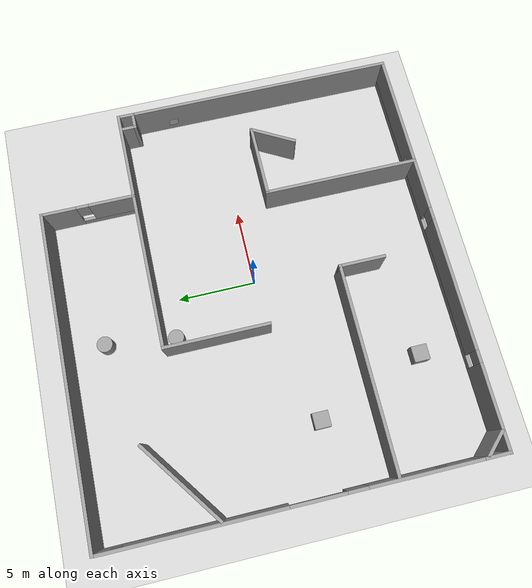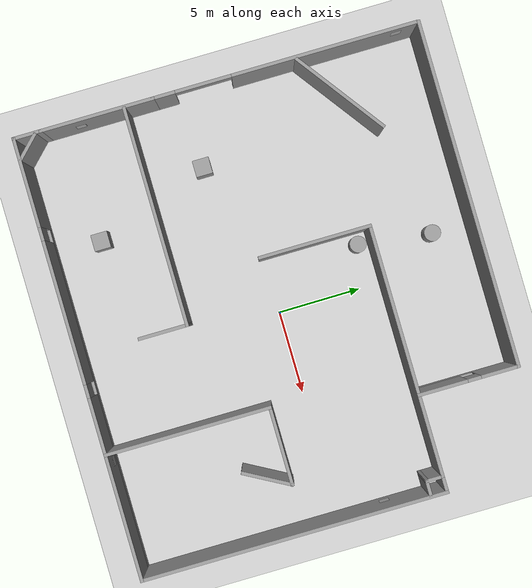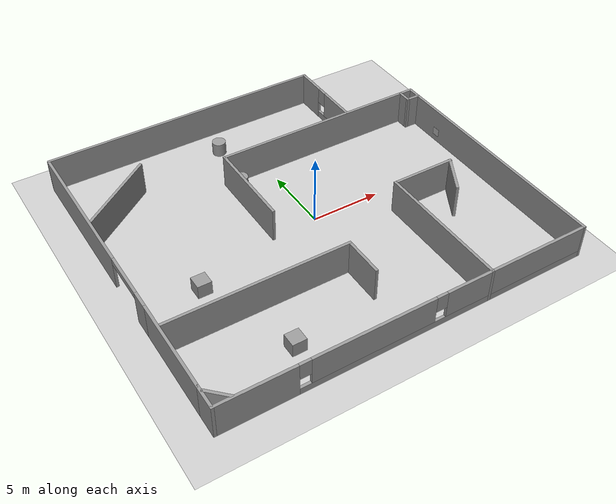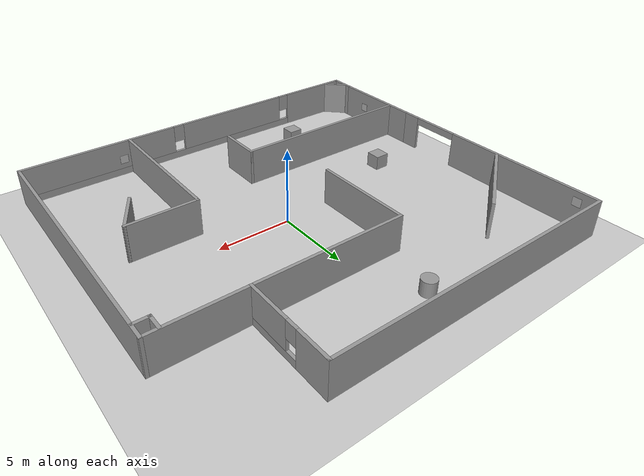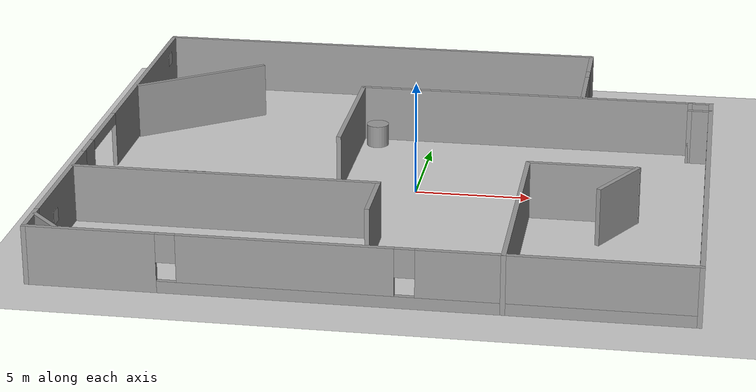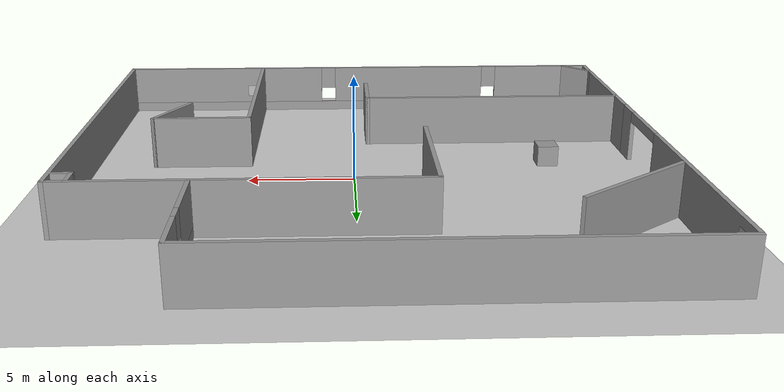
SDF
<sdf version="1.4">
 <world name="default">
  <light name="sun" type="directional">
   <pose>0 0 10 0 -0 0</pose>
   <diffuse>0.8 0.8 0.8 1</diffuse>
   <specular>0.2 0.2 0.2 1</specular>
   <attenuation>
    <range>1000</range>
    <constant>0.9</constant>
    <linear>0.01</linear>
    <quadratic>0.001</quadratic>
   </attenuation>
   <direction>-0.5 0.1 -0.9</direction>
  </light>
  <model name="ground_plane">
   <static>1</static>
   <link name="link">
    <collision name="collision">
     <geometry><plane><normal>0 0 1</normal><size>100 100</size></plane></geometry>
     <surface><friction><ode><mu>100</mu><mu2>50</mu2></ode></friction></surface>
    </collision>
    <visual name="visual">
     <cast_shadows>0</cast_shadows>
     <geometry><plane><normal>0 0 1</normal><size>100 100</size></plane></geometry>
     <material>
      <script><uri>file://media/materials/scripts/gazebo.material</uri><name>Gazebo/Grey</name></script>
     </material>
    </visual>
    <velocity_decay><linear>0</linear><angular>0</angular></velocity_decay>
   </link>
  </model>
  <physics type="ode">
   <max_step_size>0.001</max_step_size>
   <real_time_factor>1</real_time_factor>
   <real_time_update_rate>1000</real_time_update_rate>
   <gravity>0 0 -9.8</gravity>
  </physics>
  <scene><ambient>0.4 0.4 0.4 1</ambient><background>0.7 0.7 0.7 1</background><shadows>1</shadows></scene>
  <spherical_coordinates>
   <surface_model>EARTH_WGS84</surface_model>
   <latitude_deg>0</latitude_deg>
   <longitude_deg>0</longitude_deg>
   <elevation>0</elevation>
   <heading_deg>0</heading_deg>
  </spherical_coordinates>
  <model name="CasaBuena">
   <link name="Wall_10">
    <collision name="Wall_10_Collision">
     <geometry><box><size>6.78041 0.2 2.5</size></box></geometry>
     <pose>0 0 1.25 0 -0 0</pose>
    </collision>
    <visual name="Wall_10_Visual">
     <pose>0 0 1.25 0 -0 0</pose>
     <geometry><box><size>6.78041 0.2 2.5</size></box></geometry>
     <material>
      <script><uri>file://media/materials/scripts/gazebo.material</uri><name>Gazebo/Grey</name></script>
     </material>
    </visual>
    <velocity_decay><linear>0</linear><angular>0</angular></velocity_decay>
    <pose>-0.354843 0.05158 0 0 0 -1.5708</pose>
   </link>
   <link name="Wall_12">
    <collision name="Wall_12_Collision">
     <geometry><box><size>20.7903 0.2 2.5</size></box></geometry>
     <pose>0 0 1.25 0 -0 0</pose>
    </collision>
    <visual name="Wall_12_Visual">
     <pose>0 0 1.25 0 -0 0</pose>
     <geometry><box><size>20.7903 0.2 2.5</size></box></geometry>
     <material>
      <script><uri>file://media/materials/scripts/gazebo.material</uri><name>Gazebo/Grey</name></script>
     </material>
    </visual>
    <velocity_decay><linear>0</linear><angular>0</angular></velocity_decay>
    <pose>-0.531735 9.28538 0 0 -0 0</pose>
   </link>
   <link name="Wall_13">
    <pose>9.76342 6.31358 0 0 0 -1.5708</pose>
    <visual name="Wall_13_Visual_0">
     <pose>-1.90929 0 1.25 0 -0 0</pose>
     <geometry><box><size>2.32501 0.2 2.5</size></box></geometry>
     <material>
      <script><uri>file://media/materials/scripts/gazebo.material</uri><name>Gazebo/Grey</name></script>
     </material>
    </visual>
    <collision name="Wall_13_Collision_0">
     <geometry><box><size>2.32501 0.2 2.5</size></box></geometry>
     <pose>-1.90929 0 1.25 0 -0 0</pose>
    </collision>
    <visual name="Wall_13_Visual_1">
     <pose>1.1625 0 0.25 0 -0 0</pose>
     <geometry><box><size>3.81859 0.2 0.5</size></box></geometry>
     <material>
      <script><uri>file://media/materials/scripts/gazebo.material</uri><name>Gazebo/Grey</name></script>
     </material>
    </visual>
    <collision name="Wall_13_Collision_1">
     <geometry><box><size>3.81859 0.2 0.5</size></box></geometry>
     <pose>1.1625 0 0.25 0 -0 0</pose>
    </collision>
    <visual name="Wall_13_Visual_2">
     <pose>1.5625 0 1.5 0 -0 0</pose>
     <geometry><box><size>3.01858 0.2 2</size></box></geometry>
     <material>
      <script><uri>file://media/materials/scripts/gazebo.material</uri><name>Gazebo/Grey</name></script>
     </material>
    </visual>
    <collision name="Wall_13_Collision_2">
     <geometry><box><size>3.01858 0.2 2</size></box></geometry>
     <pose>1.5625 0 1.5 0 -0 0</pose>
    </collision>
    <visual name="Wall_13_Visual_3">
     <pose>-0.346788 0 1.9 0 -0 0</pose>
     <geometry><box><size>0.8 0.2 1.2</size></box></geometry>
     <material>
      <script><uri>file://media/materials/scripts/gazebo.material</uri><name>Gazebo/Grey</name></script>
     </material>
    </visual>
    <collision name="Wall_13_Collision_3">
     <geometry><box><size>0.8 0.2 1.2</size></box></geometry>
     <pose>-0.346788 0 1.9 0 -0 0</pose>
    </collision>
    <velocity_decay><linear>0</linear><angular>0</angular></velocity_decay>
   </link>
   <link name="Wall_15">
    <collision name="Wall_15_Collision">
     <geometry><box><size>13.1485 0.2 2.5</size></box></geometry>
     <pose>0 0 1.25 0 -0 0</pose>
    </collision>
    <visual name="Wall_15_Visual">
     <pose>0 0 1.25 0 -0 0</pose>
     <geometry><box><size>13.1485 0.2 2.5</size></box></geometry>
     <material>
      <script><uri>file://media/materials/scripts/gazebo.material</uri><name>Gazebo/Grey</name></script>
     </material>
    </visual>
    <velocity_decay><linear>0</linear><angular>0</angular></velocity_decay>
    <pose>-4.28186 -8.33313 0 0 -0 0</pose>
   </link>
   <link name="Wall_16">
    <collision name="Wall_16_Collision">
     <geometry><box><size>3.03028 0.2 2.5</size></box></geometry>
     <pose>0 0 1.25 0 -0 0</pose>
    </collision>
    <visual name="Wall_16_Visual">
     <pose>0 0 1.25 0 -0 0</pose>
     <geometry><box><size>3.03028 0.2 2.5</size></box></geometry>
     <material>
      <script><uri>file://media/materials/scripts/gazebo.material</uri><name>Gazebo/Grey</name></script>
     </material>
    </visual>
    <velocity_decay><linear>0</linear><angular>0</angular></velocity_decay>
    <pose>2.19241 -9.74827 0 0 0 -1.5708</pose>
   </link>
   <link name="Wall_18">
    <collision name="Wall_18_Collision">
     <geometry><box><size>10.0352 0.2 2.5</size></box></geometry>
     <pose>0 0 1.25 0 -0 0</pose>
    </collision>
    <visual name="Wall_18_Visual">
     <pose>0 0 1.25 0 -0 0</pose>
     <geometry><box><size>10.0352 0.2 2.5</size></box></geometry>
     <material>
      <script><uri>file://media/materials/scripts/gazebo.material</uri><name>Gazebo/Grey</name></script>
     </material>
    </visual>
    <velocity_decay><linear>0</linear><angular>0</angular></velocity_decay>
    <pose>8.06525 -9.99592 0 0 -0 1.5708</pose>
   </link>
   <link name="Wall_19">
    <collision name="Wall_19_Collision">
     <geometry><box><size>4.79921 0.2 2.5</size></box></geometry>
     <pose>0 0 1.25 0 -0 0</pose>
    </collision>
    <visual name="Wall_19_Visual">
     <pose>0 0 1.25 0 -0 0</pose>
     <geometry><box><size>4.79921 0.2 2.5</size></box></geometry>
     <material>
      <script><uri>file://media/materials/scripts/gazebo.material</uri><name>Gazebo/Grey</name></script>
     </material>
    </visual>
    <velocity_decay><linear>0</linear><angular>0</angular></velocity_decay>
    <pose>10.3649 -5.07831 0 0 -0 0</pose>
   </link>
   <link name="Wall_20">
    <collision name="Wall_20_Collision">
     <geometry><box><size>3.11395 0.2 2.5</size></box></geometry>
     <pose>0 0 1.25 0 -0 0</pose>
    </collision>
    <visual name="Wall_20_Visual">
     <pose>0 0 1.25 0 -0 0</pose>
     <geometry><box><size>3.11395 0.2 2.5</size></box></geometry>
     <material>
      <script><uri>file://media/materials/scripts/gazebo.material</uri><name>Gazebo/Grey</name></script>
     </material>
    </visual>
    <velocity_decay><linear>0</linear><angular>0</angular></velocity_decay>
    <pose>11.9569 -6.35193 0 0 0 -2.07789</pose>
   </link>
   <link name="Wall_22">
    <collision name="Wall_22_Collision">
     <geometry><box><size>1.81673 0.2 2.5</size></box></geometry>
     <pose>0 0 1.25 0 -0 0</pose>
    </collision>
    <visual name="Wall_22_Visual">
     <pose>0 0 1.25 0 -0 0</pose>
     <geometry><box><size>1.81673 0.2 2.5</size></box></geometry>
     <material>
      <script><uri>file://media/materials/scripts/gazebo.material</uri><name>Gazebo/Grey</name></script>
     </material>
    </visual>
    <velocity_decay><linear>0</linear><angular>0</angular></velocity_decay>
    <pose>-10.1725 -14.2616 0 0 0 -0.785398</pose>
   </link>
   <link name="Wall_24">
    <collision name="Wall_24_Collision">
     <geometry><box><size>1.10409 0.2 2.5</size></box></geometry>
     <pose>0 0 1.25 0 -0 0</pose>
    </collision>
    <visual name="Wall_24_Visual">
     <pose>0 0 1.25 0 -0 0</pose>
     <geometry><box><size>1.10409 0.2 2.5</size></box></geometry>
     <material>
      <script><uri>file://media/materials/scripts/gazebo.material</uri><name>Gazebo/Grey</name></script>
     </material>
    </visual>
    <velocity_decay><linear>0</linear><angular>0</angular></velocity_decay>
    <pose>14.6273 2.83875 0 0 0 -1.5708</pose>
   </link>
   <link name="Wall_25">
    <collision name="Wall_25_Collision">
     <geometry><box><size>1.09504 0.2 2.5</size></box></geometry>
     <pose>0 0 1.25 0 -0 0</pose>
    </collision>
    <visual name="Wall_25_Visual">
     <pose>0 0 1.25 0 -0 0</pose>
     <geometry><box><size>1.09504 0.2 2.5</size></box></geometry>
     <material>
      <script><uri>file://media/materials/scripts/gazebo.material</uri><name>Gazebo/Grey</name></script>
     </material>
    </visual>
    <velocity_decay><linear>0</linear><angular>0</angular></velocity_decay>
    <pose>15.0748 2.38671 0 0 -0 0</pose>
   </link>
   <link name="Wall_34">
    <collision name="Wall_34_Collision">
     <geometry><box><size>6.45167 0.2 2.5</size></box></geometry>
     <pose>0 0 1.25 0 -0 0</pose>
    </collision>
    <visual name="Wall_34_Visual">
     <pose>0 0 1.25 0 -0 0</pose>
     <geometry><box><size>6.45167 0.2 2.5</size></box></geometry>
     <material>
      <script><uri>file://media/materials/scripts/gazebo.material</uri><name>Gazebo/Grey</name></script>
     </material>
    </visual>
    <velocity_decay><linear>0</linear><angular>0</angular></velocity_decay>
    <pose>-8.16692 3.83009 0 0 -0 0.631691</pose>
   </link>
   <link name="Wall_4">
    <pose>-10.8486 1.25382 0 0 0 -1.5708</pose>
    <visual name="Wall_4_Visual_0">
     <pose>-2.40111 0 1.25 0 -0 0</pose>
     <geometry><box><size>11.1227 0.2 2.5</size></box></geometry>
     <material>
      <script><uri>file://media/materials/scripts/gazebo.material</uri><name>Gazebo/Grey</name></script>
     </material>
    </visual>
    <collision name="Wall_4_Collision_0">
     <geometry><box><size>11.1227 0.2 2.5</size></box></geometry>
     <pose>-2.40111 0 1.25 0 -0 0</pose>
    </collision>
    <visual name="Wall_4_Visual_1">
     <pose>7.24506 0 1.25 0 -0 0</pose>
     <geometry><box><size>1.4348 0.2 2.5</size></box></geometry>
     <material>
      <script><uri>file://media/materials/scripts/gazebo.material</uri><name>Gazebo/Grey</name></script>
     </material>
    </visual>
    <collision name="Wall_4_Collision_1">
     <geometry><box><size>1.4348 0.2 2.5</size></box></geometry>
     <pose>7.24506 0 1.25 0 -0 0</pose>
    </collision>
    <visual name="Wall_4_Visual_2">
     <pose>4.84395 0 2.25 0 -0 0</pose>
     <geometry><box><size>3.36742 0.2 0.5</size></box></geometry>
     <material>
      <script><uri>file://media/materials/scripts/gazebo.material</uri><name>Gazebo/Grey</name></script>
     </material>
    </visual>
    <collision name="Wall_4_Collision_2">
     <geometry><box><size>3.36742 0.2 0.5</size></box></geometry>
     <pose>4.84395 0 2.25 0 -0 0</pose>
    </collision>
    <velocity_decay><linear>0</linear><angular>0</angular></velocity_decay>
   </link>
   <link name="Wall_5">
    <collision name="Wall_5_Collision">
     <geometry><box><size>6.88988 0.2 2.5</size></box></geometry>
     <pose>0 0 1.25 0 -0 0</pose>
    </collision>
    <visual name="Wall_5_Visual">
     <pose>0 0 1.25 0 -0 0</pose>
     <geometry><box><size>6.88988 0.2 2.5</size></box></geometry>
     <material>
      <script><uri>file://media/materials/scripts/gazebo.material</uri><name>Gazebo/Grey</name></script>
     </material>
    </visual>
    <velocity_decay><linear>0</linear><angular>0</angular></velocity_decay>
    <pose>-10.8486 -9.95357 0 0 0 -1.5708</pose>
   </link>
   <link name="Wall_6">
    <collision name="Wall_6_Collision">
     <geometry><box><size>1.81503 0.2 2.5</size></box></geometry>
     <pose>0 0 1.25 0 -0 0</pose>
    </collision>
    <visual name="Wall_6_Visual">
     <pose>0 0 1.25 0 -0 0</pose>
     <geometry><box><size>1.81503 0.2 2.5</size></box></geometry>
     <material>
      <script><uri>file://media/materials/scripts/gazebo.material</uri><name>Gazebo/Grey</name></script>
     </material>
    </visual>
    <velocity_decay><linear>0</linear><angular>0</angular></velocity_decay>
    <pose>-10.8486 -14.106 0 0 0 -1.5708</pose>
   </link>
   <link name="Wall_7">
    <pose>2.35846 -14.9135 0 0 -0 0</pose>
    <visual name="Wall_7_Visual_0">
     <pose>-10.6088 0 1.25 0 -0 0</pose>
     <geometry><box><size>5.39652 0.2 2.5</size></box></geometry>
     <material>
      <script><uri>file://media/materials/scripts/gazebo.material</uri><name>Gazebo/Grey</name></script>
     </material>
    </visual>
    <collision name="Wall_7_Collision_0">
     <geometry><box><size>5.39652 0.2 2.5</size></box></geometry>
     <pose>-10.6088 0 1.25 0 -0 0</pose>
    </collision>
    <visual name="Wall_7_Visual_1">
     <pose>2.69826 0 0.25 0 -0 0</pose>
     <geometry><box><size>21.2176 0.2 0.5</size></box></geometry>
     <material>
      <script><uri>file://media/materials/scripts/gazebo.material</uri><name>Gazebo/Grey</name></script>
     </material>
    </visual>
    <collision name="Wall_7_Collision_1">
     <geometry><box><size>21.2176 0.2 0.5</size></box></geometry>
     <pose>2.69826 0 0.25 0 -0 0</pose>
    </collision>
    <visual name="Wall_7_Visual_2">
     <pose>-2.80363 0 1.5 0 -0 0</pose>
     <geometry><box><size>8.61377 0.2 2</size></box></geometry>
     <material>
      <script><uri>file://media/materials/scripts/gazebo.material</uri><name>Gazebo/Grey</name></script>
     </material>
    </visual>
    <collision name="Wall_7_Collision_2">
     <geometry><box><size>8.61377 0.2 2</size></box></geometry>
     <pose>-2.80363 0 1.5 0 -0 0</pose>
    </collision>
    <visual name="Wall_7_Visual_3">
     <pose>7.80515 0 1.5 0 -0 0</pose>
     <geometry><box><size>11.0038 0.2 2</size></box></geometry>
     <material>
      <script><uri>file://media/materials/scripts/gazebo.material</uri><name>Gazebo/Grey</name></script>
     </material>
    </visual>
    <collision name="Wall_7_Collision_3">
     <geometry><box><size>11.0038 0.2 2</size></box></geometry>
     <pose>7.80515 0 1.5 0 -0 0</pose>
    </collision>
    <visual name="Wall_7_Visual_4">
     <pose>-7.51051 0 1.9 0 -0 0</pose>
     <geometry><box><size>0.8 0.2 1.2</size></box></geometry>
     <material>
      <script><uri>file://media/materials/scripts/gazebo.material</uri><name>Gazebo/Grey</name></script>
     </material>
    </visual>
    <collision name="Wall_7_Collision_4">
     <geometry><box><size>0.8 0.2 1.2</size></box></geometry>
     <pose>-7.51051 0 1.9 0 -0 0</pose>
    </collision>
    <visual name="Wall_7_Visual_5">
     <pose>1.90325 0 1.9 0 -0 0</pose>
     <geometry><box><size>0.8 0.2 1.2</size></box></geometry>
     <material>
      <script><uri>file://media/materials/scripts/gazebo.material</uri><name>Gazebo/Grey</name></script>
     </material>
    </visual>
    <collision name="Wall_7_Collision_5">
     <geometry><box><size>0.8 0.2 1.2</size></box></geometry>
     <pose>1.90325 0 1.9 0 -0 0</pose>
    </collision>
    <velocity_decay><linear>0</linear><angular>0</angular></velocity_decay>
   </link>
   <link name="Wall_8">
    <collision name="Wall_8_Collision">
     <geometry><box><size>18.4553 0.2 2.5</size></box></geometry>
     <pose>0 0 1.25 0 -0 0</pose>
    </collision>
    <visual name="Wall_8_Visual">
     <pose>0 0 1.25 0 -0 0</pose>
     <geometry><box><size>18.4553 0.2 2.5</size></box></geometry>
     <material>
      <script><uri>file://media/materials/scripts/gazebo.material</uri><name>Gazebo/Grey</name></script>
     </material>
    </visual>
    <velocity_decay><linear>0</linear><angular>0</angular></velocity_decay>
    <pose>15.5655 -5.78588 0 0 -0 1.5708</pose>
   </link>
   <link name="Wall_9">
    <collision name="Wall_9_Collision">
     <geometry><box><size>16.1203 0.2 2.5</size></box></geometry>
     <pose>0 0 1.25 0 -0 0</pose>
    </collision>
    <visual name="Wall_9_Visual">
     <pose>0 0 1.25 0 -0 0</pose>
     <geometry><box><size>16.1203 0.2 2.5</size></box></geometry>
     <material>
      <script><uri>file://media/materials/scripts/gazebo.material</uri><name>Gazebo/Grey</name></script>
     </material>
    </visual>
    <velocity_decay><linear>0</linear><angular>0</angular></velocity_decay>
    <pose>7.60533 3.34178 0 0 -0 3.14159</pose>
   </link>
   <static>1</static>
   <pose>-3 3 0 0 -0 0</pose>
  </model>
  <model name="unit_cylinder_1">
   <pose>-2 10 0.499998 1e-06 -0 0</pose>
   <link name="link">
    <inertial>
     <mass>1</mass>
     <inertia><ixx>1</ixx><ixy>0</ixy><ixz>0</ixz><iyy>1</iyy><iyz>0</iyz><izz>1</izz></inertia>
    </inertial>
    <collision name="collision">
     <geometry><cylinder><radius>0.5</radius><length>1</length></cylinder></geometry>
    </collision>
    <visual name="visual">
     <geometry><cylinder><radius>0.5</radius><length>1</length></cylinder></geometry>
     <material>
      <script><uri>file://media/materials/scripts/gazebo.material</uri><name>Gazebo/Grey</name></script>
     </material>
    </visual>
    <velocity_decay><linear>0</linear><angular>0</angular></velocity_decay>
   </link>
   <static>0</static>
  </model>
  <model name="unit_box_1">
   <pose>-9.54121 -2 0.499995 3e-06 3e-06 0</pose>
   <link name="link">
    <inertial>
     <mass>1</mass>
     <inertia><ixx>1</ixx><ixy>0</ixy><ixz>0</ixz><iyy>1</iyy><iyz>0</iyz><izz>1</izz></inertia>
    </inertial>
    <collision name="collision"><geometry><box><size>1 1 1</size></box></geometry></collision>
    <visual name="visual">
     <geometry><box><size>1 1 1</size></box></geometry>
     <material>
      <script><uri>file://media/materials/scripts/gazebo.material</uri><name>Gazebo/Grey</name></script>
     </material>
    </visual>
    <velocity_decay><linear>0</linear><angular>0</angular></velocity_decay>
   </link>
   <static>0</static>
  </model>
  <model name="unit_cylinder_2">
   <pose>-2.57711 5.58134 0.499998 1e-06 -0 0</pose>
   <link name="link">
    <inertial>
     <mass>1</mass>
     <inertia><ixx>1</ixx><ixy>0</ixy><ixz>0</ixz><iyy>1</iyy><iyz>0</iyz><izz>1</izz></inertia>
    </inertial>
    <collision name="collision">
     <geometry><cylinder><radius>0.5</radius><length>1</length></cylinder></geometry>
    </collision>
    <visual name="visual">
     <geometry><cylinder><radius>0.5</radius><length>1</length></cylinder></geometry>
     <material>
      <script><uri>file://media/materials/scripts/gazebo.material</uri><name>Gazebo/Grey</name></script>
     </material>
    </visual>
    <velocity_decay><linear>0</linear><angular>0</angular></velocity_decay>
   </link>
   <static>0</static>
  </model>
  <model name="unit_box_2">
   <pose>-7 -9 0.499995 3e-06 3e-06 0</pose>
   <link name="link">
    <inertial>
     <mass>1</mass>
     <inertia><ixx>1</ixx><ixy>0</ixy><ixz>0</ixz><iyy>1</iyy><iyz>0</iyz><izz>1</izz></inertia>
    </inertial>
    <collision name="collision"><geometry><box><size>1 1 1</size></box></geometry></collision>
    <visual name="visual">
     <geometry><box><size>1 1 1</size></box></geometry>
     <material>
      <script><uri>file://media/materials/scripts/gazebo.material</uri><name>Gazebo/Grey</name></script>
     </material>
    </visual>
    <velocity_decay><linear>0</linear><angular>0</angular></velocity_decay>
   </link>
   <static>0</static>
  </model>
  <model name="arMarker3">
   <static>1</static>
   <link name="arMarker3_link">
    <collision name="arMarker3_collision"><geometry><box><size>0.1 0.6 0.6</size></box></geometry></collision>
    <visual name="arMarker3_visual">
     <geometry><box><size>0.1 0.6 0.6</size></box></geometry>
     <material>
      <script>
       <uri>model://marker3/materials/scripts</uri>
       <uri>model://marker3/materials/textures</uri>
       <name>marker3</name>
      </script>
     </material>
    </visual>
    <velocity_decay><linear>0</linear><angular>0</angular></velocity_decay>
   </link>
   <pose>-13.795492 11 1.78 0 -0 0</pose>
  </model>
  <model name="arMarker3_0">
   <static>1</static>
   <link name="arMarker3_link">
    <collision name="arMarker3_collision"><geometry><box><size>0.1 0.6 0.6</size></box></geometry></collision>
    <visual name="arMarker3_visual">
     <geometry><box><size>0.1 0.6 0.6</size></box></geometry>
     <material>
      <script>
       <uri>model://marker3/materials/scripts</uri>
       <uri>model://marker3/materials/textures</uri>
       <name>marker3</name>
      </script>
     </material>
    </visual>
    <velocity_decay><linear>0</linear><angular>0</angular></velocity_decay>
   </link>
   <pose>12.509242 2.841896 0.757536 0 -0 0</pose>
  </model>
  <model name="arMarker3_1">
   <static>1</static>
   <link name="arMarker3_link">
    <collision name="arMarker3_collision"><geometry><box><size>0.1 0.6 0.6</size></box></geometry></collision>
    <visual name="arMarker3_visual">
     <geometry><box><size>0.1 0.6 0.6</size></box></geometry>
     <material>
      <script>
       <uri>model://marker3/materials/scripts</uri>
       <uri>model://marker3/materials/textures</uri>
       <name>marker3</name>
      </script>
     </material>
    </visual>
    <velocity_decay><linear>0</linear><angular>0</angular></velocity_decay>
   </link>
   <pose>5.661550 -11.858411 1.173735 0 -0 1.575818</pose>
  </model>
  <model name="arMarker3_2">
   <static>1</static>
   <link name="arMarker3_link">
    <collision name="arMarker3_collision"><geometry><box><size>0.1 0.6 0.6</size></box></geometry></collision>
    <visual name="arMarker3_visual">
     <geometry><box><size>0.1 0.6 0.6</size></box></geometry>
     <material>
      <script>
       <uri>model://marker3/materials/scripts</uri>
       <uri>model://marker3/materials/textures</uri>
       <name>marker3</name>
      </script>
     </material>
    </visual>
    <velocity_decay><linear>0</linear><angular>0</angular></velocity_decay>
   </link>
   <pose>-13.792182 -8.138100 1.319170 0 -0 0</pose>
  </model>
 </world>
</sdf>
